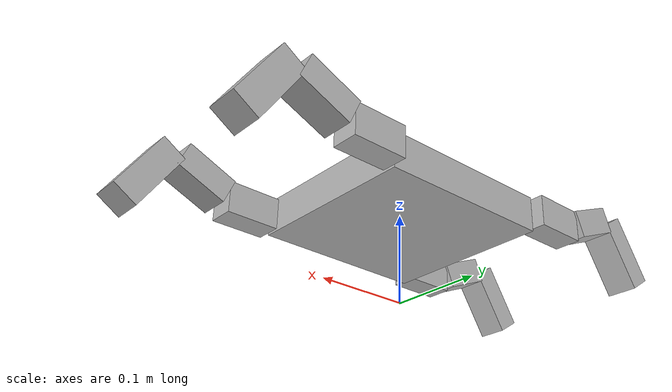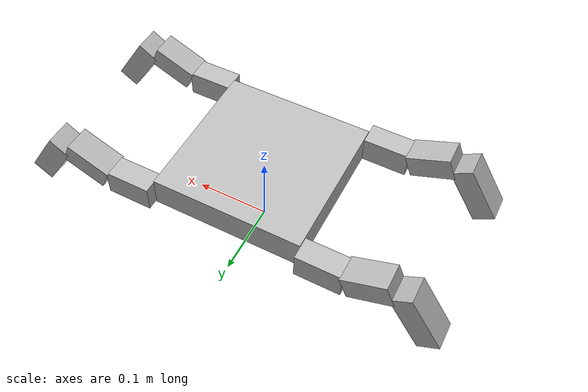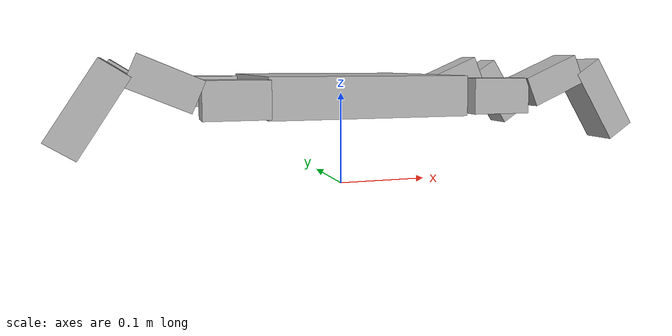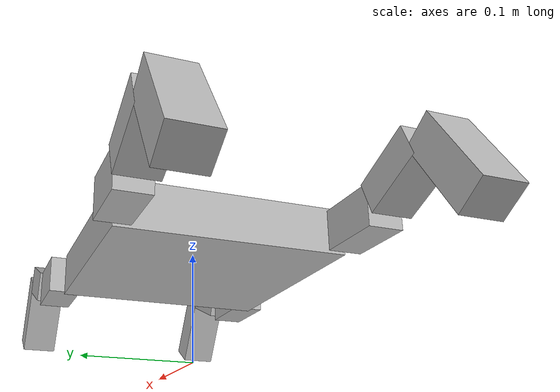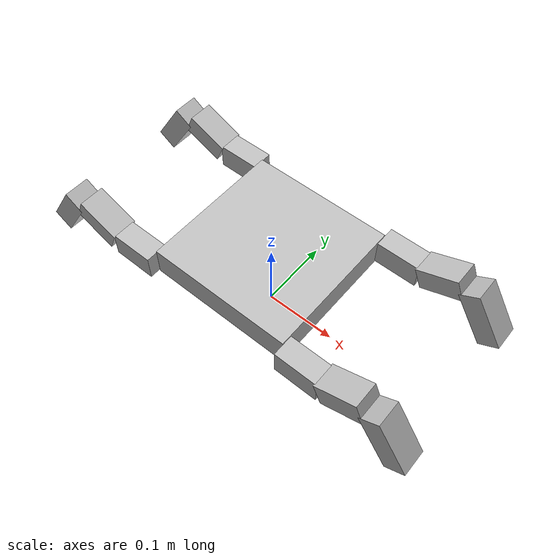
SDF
<?xml version="1.0"?>
<sdf version="1.4">
  <model name="mj_mech">
    <static>false</static>

    <link name="chassis">
      <pose>0 0 0.1 0 0 0</pose>
      <inertial><mass>0.4</mass></inertial>
      <collision name="collision">
        <geometry><box><size>.2 .2 .04</size></box></geometry>
      </collision>
      <visual name="visual">
        <geometry><box><size>.2 .2 .04</size></box></geometry>
      </visual>
    </link>

    <!-- First leg -->

    <link name="body_bracket1">
      <pose>0.13 0.1 0.1 0 0 0</pose>
      <inertial><mass>0.05</mass></inertial>
      <collision name="collision">
        <geometry><box><size>0.06 0.03 0.035</size></box></geometry>
      </collision>
      <visual name="visual">
        <geometry><box><size>0.06 0.03 0.035</size></box></geometry>
      </visual>
    </link>

    <joint type="revolute" name="body_hinge1">
      <pose>-0.03 0.0 0.0 0 0 0</pose>
      <child>body_bracket1</child>
      <parent>chassis</parent>
      <axis>
        <xyz>0 0 1</xyz>
        <dynamics><damping>0.1</damping><friction>0.2</friction></dynamics>
      </axis>
    </joint>

    <link name="coxa1">
      <pose>0.19 0.1 0.115 0 -0.4 0</pose>
      <inertial><mass>0.05</mass></inertial>
      <collision name="collision">
        <geometry><box><size>0.06 0.035 0.03</size></box></geometry>
      </collision>
      <visual name="visual">
        <geometry><box><size>0.06 0.035 0.03</size></box></geometry>
      </visual>
    </link>

    <joint type="revolute" name="coxa_hinge1">
      <pose>-0.03 0.0 0.0 0 0 0</pose>
      <child>coxa1</child>
      <parent>body_bracket1</parent>
      <axis>
        <xyz>0 1 0</xyz>
        <dynamics><damping>0.1</damping><friction>0.2</friction></dynamics>
      </axis>
    </joint>

    <link name="femur1">
      <pose>0.25 0.1 0.095 0 1.0 0</pose>
      <inertial><mass>0.05</mass></inertial>
      <collision name="collision">
        <geometry><box><size>0.08 0.035 0.03</size></box></geometry>
      </collision>
      <visual name="visual">
        <geometry><box><size>0.08 0.035 0.03</size></box></geometry>
      </visual>
    </link>

    <joint type="revolute" name="femur_hinge1">
      <pose>-0.03 0.0 0.0 0 0 0</pose>
      <child>femur1</child>
      <parent>coxa1</parent>
      <axis>
        <xyz>0 1 0</xyz>
        <dynamics><damping>0.1</damping><friction>0.2</friction></dynamics>
      </axis>
    </joint>

    <!-- Second leg -->

    <link name="body_bracket2">
      <pose>0.13 -0.1 0.1 0 0 0</pose>
      <inertial><mass>0.05</mass></inertial>
      <collision name="collision">
        <geometry><box><size>0.06 0.03 0.035</size></box></geometry>
      </collision>
      <visual name="visual">
        <geometry><box><size>0.06 0.03 0.035</size></box></geometry>
      </visual>
    </link>

    <joint type="revolute" name="body_hinge2">
      <pose>-0.03 0.0 0.0 0 0 0</pose>
      <child>body_bracket2</child>
      <parent>chassis</parent>
      <axis>
        <xyz>0 0 1</xyz>
        <dynamics><damping>0.1</damping><friction>0.2</friction></dynamics>
      </axis>
    </joint>

    <link name="coxa2">
      <pose>0.19 -0.1 0.115 0 -0.4 0</pose>
      <inertial><mass>0.05</mass></inertial>
      <collision name="collision">
        <geometry><box><size>0.06 0.035 0.03</size></box></geometry>
      </collision>
      <visual name="visual">
        <geometry><box><size>0.06 0.035 0.03</size></box></geometry>
      </visual>
    </link>

    <joint type="revolute" name="coxa_hinge2">
      <pose>-0.03 0.0 0.0 0 0 0</pose>
      <child>coxa2</child>
      <parent>body_bracket2</parent>
      <axis>
        <xyz>0 1 0</xyz>
        <dynamics><damping>0.1</damping><friction>0.2</friction></dynamics>
      </axis>
    </joint>

    <link name="femur2">
      <pose>0.25 -0.1 0.095 0 1.0 0</pose>
      <inertial><mass>0.05</mass></inertial>
      <collision name="collision">
        <geometry><box><size>0.08 0.035 0.03</size></box></geometry>
      </collision>
      <visual name="visual">
        <geometry><box><size>0.08 0.035 0.03</size></box></geometry>
      </visual>
    </link>

    <joint type="revolute" name="femur_hinge2">
      <pose>-0.03 0.0 0.0 0 0 0</pose>
      <child>femur2</child>
      <parent>coxa2</parent>
      <axis>
        <xyz>0 1 0</xyz>
        <dynamics><damping>0.1</damping><friction>0.2</friction></dynamics>
      </axis>
    </joint>

    <!-- Third leg -->

    <link name="body_bracket3">
      <pose>-0.13 0.1 0.1 0 0 3.14159</pose>
      <inertial><mass>0.05</mass></inertial>
      <collision name="collision">
        <geometry><box><size>0.06 0.03 0.035</size></box></geometry>
      </collision>
      <visual name="visual">
        <geometry><box><size>0.06 0.03 0.035</size></box></geometry>
      </visual>
    </link>

    <joint type="revolute" name="body_hinge3">
      <pose>-0.03 0.0 0.0 0 0 0</pose>
      <child>body_bracket3</child>
      <parent>chassis</parent>
      <axis>
        <xyz>0 0 1</xyz>
        <dynamics><damping>0.1</damping><friction>0.2</friction></dynamics>
      </axis>
    </joint>

    <link name="coxa3">
      <pose>-0.19 0.1 0.115 0 -0.4 3.14159</pose>
      <inertial><mass>0.05</mass></inertial>
      <collision name="collision">
        <geometry><box><size>0.06 0.035 0.03</size></box></geometry>
      </collision>
      <visual name="visual">
        <geometry><box><size>0.06 0.035 0.03</size></box></geometry>
      </visual>
    </link>

    <joint type="revolute" name="coxa_hinge3">
      <pose>-0.03 0.0 0.0 0 0 0</pose>
      <child>coxa3</child>
      <parent>body_bracket3</parent>
      <axis>
        <xyz>0 1 0</xyz>
        <dynamics><damping>0.1</damping><friction>0.2</friction></dynamics>
      </axis>
    </joint>

    <link name="femur3">
      <pose>-0.25 0.1 0.095 0 1.0 3.14159</pose>
      <inertial><mass>0.05</mass></inertial>
      <collision name="collision">
        <geometry><box><size>0.08 0.035 0.03</size></box></geometry>
      </collision>
      <visual name="visual">
        <geometry><box><size>0.08 0.035 0.03</size></box></geometry>
      </visual>
    </link>

    <joint type="revolute" name="femur_hinge3">
      <pose>-0.03 0.0 0.0 0 0 0</pose>
      <child>femur3</child>
      <parent>coxa3</parent>
      <axis>
        <xyz>0 1 0</xyz>
        <dynamics><damping>0.1</damping><friction>0.2</friction></dynamics>
      </axis>
    </joint>

    <!-- Fourth leg -->

    <link name="body_bracket4">
      <pose>-0.13 -0.1 0.1 0 0 3.14159</pose>
      <inertial><mass>0.05</mass></inertial>
      <collision name="collision">
        <geometry><box><size>0.06 0.03 0.035</size></box></geometry>
      </collision>
      <visual name="visual">
        <geometry><box><size>0.06 0.03 0.035</size></box></geometry>
      </visual>
    </link>

    <joint type="revolute" name="body_hinge4">
      <pose>-0.03 0.0 0.0 0 0 0</pose>
      <child>body_bracket4</child>
      <parent>chassis</parent>
      <axis>
        <xyz>0 0 1</xyz>
        <dynamics><damping>0.1</damping><friction>0.2</friction></dynamics>
      </axis>
    </joint>

    <link name="coxa4">
      <pose>-0.19 -0.1 0.115 0 -0.4 3.14159</pose>
      <inertial><mass>0.05</mass></inertial>
      <collision name="collision">
        <geometry><box><size>0.06 0.035 0.03</size></box></geometry>
      </collision>
      <visual name="visual">
        <geometry><box><size>0.06 0.035 0.03</size></box></geometry>
      </visual>
    </link>

    <joint type="revolute" name="coxa_hinge4">
      <pose>-0.03 0.0 0.0 0 0 0</pose>
      <child>coxa4</child>
      <parent>body_bracket4</parent>
      <axis>
        <xyz>0 1 0</xyz>
        <dynamics><damping>0.1</damping><friction>0.2</friction></dynamics>
      </axis>
    </joint>

    <link name="femur4">
      <pose>-0.25 -0.1 0.095 0 1.0 3.14159</pose>
      <inertial><mass>0.05</mass></inertial>
      <collision name="collision">
        <geometry><box><size>0.08 0.035 0.03</size></box></geometry>
      </collision>
      <visual name="visual">
        <geometry><box><size>0.08 0.035 0.03</size></box></geometry>
      </visual>
    </link>

    <joint type="revolute" name="femur_hinge4">
      <pose>-0.03 0.0 0.0 0 0 0</pose>
      <child>femur4</child>
      <parent>coxa4</parent>
      <axis>
        <xyz>0 1 0</xyz>
        <dynamics><damping>0.1</damping><friction>0.2</friction></dynamics>
      </axis>
    </joint>
  </model>
</sdf>
